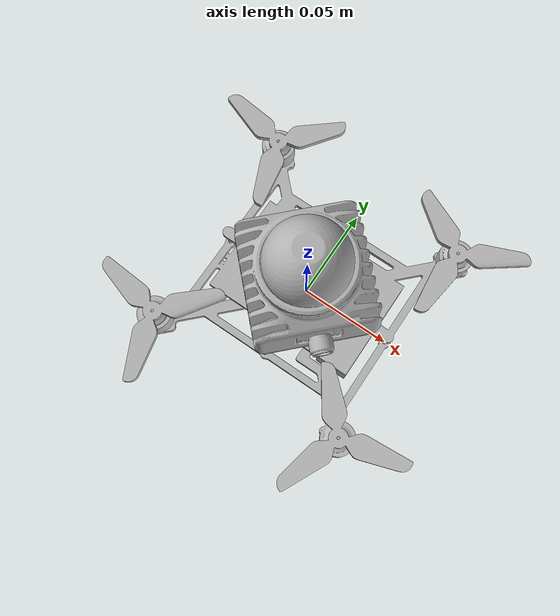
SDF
<sdf version='1.7'>
  <model name='uav_lidar' canonical_link="base_link">
    <link name='base_link'>
      <inertial>
        <pose>0.0 0 0 0 -0 0</pose>
        <mass>0.269</mass>
        <inertia>
          <ixx>2.6287e-04</ixx>
          <ixy>0</ixy>
          <ixz>0</ixz>
          <iyy>5.41904e-04</iyy>
          <iyz>0</iyz>
          <izz>3.2596e-04</izz>
        </inertia>
      </inertial>
    <collision name='base_link_collision_collision'>
        <pose>0 0 0.0 0 -0 0</pose>
        <geometry>
          <box>
            <size>0.13338 0.13338 0.074039</size>
          </box>
        </geometry>
       <surface>
          <contact />
        </surface>
      </collision>
      <visual name='base_link_visual'>
        <pose>0 0 0 0 -0 0</pose>
        <geometry>
          <mesh>
            <scale>1 1 1</scale>
            <uri>model://uav_lidar/meshes/base_link.STL</uri>
          </mesh>
        </geometry>
      </visual>
    </link>
    <joint name='joint1' type='revolute'>
      <pose relative_to='base_link'>-0.056569 0.056569 0 0 -0 0</pose>
      <parent>base_link</parent>
      <child>link1</child>
      <axis>
        <xyz>0 0 -1</xyz>
        <limit>
          <lower>-1e+16</lower>
          <upper>1e+16</upper>
        </limit>
      </axis>
    </joint>
    <link name='link1'>
      <pose relative_to='joint1'>0 0 0 0 -0 0</pose>
      <inertial>
        <pose>-0.00011 0.000222 0.018013 0 -0 0</pose>
        <mass>0.00295012</mass>
        <inertia>
          <ixx>6.45848e-07</ixx>
          <ixy>7.28245e-09</ixy>
          <ixz>4.1523e-10</ixz>
          <iyy>6.58481e-07</iyy>
          <iyz>-8.47977e-10</iyz>
          <izz>1.29996e-06</izz>
        </inertia>
      </inertial>
      <visual name='link1_visual'>
        <pose>0 0 0 0 -0 0</pose>
        <geometry>
          <mesh>
            <scale>1 1 1</scale>
            <uri>model://uav_lidar/meshes/link1.STL</uri>
          </mesh>
        </geometry>
      </visual>
    </link>
    <joint name='joint2' type='revolute'>
      <pose relative_to='base_link'>0.056569 -0.056569 0 0 -0 0</pose>
      <parent>base_link</parent>
      <child>link2</child>
      <axis>
        <xyz>0 0 -1</xyz>
        <limit>
          <lower>-1e+16</lower>
          <upper>1e+16</upper>
        </limit>
      </axis>
    </joint>
    <link name='link2'>
      <pose relative_to='joint2'>0 0 0 0 -0 0</pose>
      <inertial>
        <pose>3.9e-05 0.000245 0.018013 0 -0 0</pose>
        <mass>0.00295012</mass>
        <inertia>
          <ixx>6.43192e-07</ixx>
          <ixy>-3.52693e-09</ixy>
          <ixz>-1.50491e-10</ixz>
          <iyy>6.61136e-07</iyy>
          <iyz>-9.32115e-10</iyz>
          <izz>1.29996e-06</izz>
        </inertia>
      </inertial>
      <visual name='link2_visual'>
        <pose>0 0 0 0 -0 0</pose>
        <geometry>
          <mesh>
            <scale>1 1 1</scale>
            <uri>model://uav_lidar/meshes/link2.STL</uri>
          </mesh>
        </geometry>
      </visual>
    </link>
    <joint name='joint3' type='revolute'>
      <pose relative_to='base_link'>0.056569 0.056569 0 0 -0 0</pose>
      <parent>base_link</parent>
      <child>link3</child>
      <axis>
        <xyz>0 0 -1</xyz>
        <limit>
          <lower>-1e+16</lower>
          <upper>1e+16</upper>
        </limit>
      </axis>
    </joint>
    <link name='link3'>
      <pose relative_to='joint3'>0 0 0 0 -0 0</pose>
      <inertial>
        <pose>-0.000233 -8.4e-05 0.017987 0 -0 0</pose>
        <mass>0.00295012</mass>
        <inertia>
          <ixx>6.59226e-07</ixx>
          <ixy>-6.56214e-09</ixy>
          <ixz>-8.87866e-10</ixz>
          <iyy>6.45101e-07</iyy>
          <iyz>-3.21224e-10</iyz>
          <izz>1.29996e-06</izz>
        </inertia>
      </inertial>
      <visual name='link3_visual'>
        <pose>0 0 0 0 -0 0</pose>
        <geometry>
          <mesh>
            <scale>1 1 1</scale>
            <uri>model://uav_lidar/meshes/link3.STL</uri>
          </mesh>
        </geometry>
      </visual>
    </link>
    <joint name='joint4' type='revolute'>
      <pose relative_to='base_link'>-0.056569 -0.056569 0 0 -0 0</pose>
      <parent>base_link</parent>
      <child>link4</child>
      <axis>
        <xyz>0 0 -1</xyz>
        <limit>
          <lower>-1e+16</lower>
          <upper>1e+16</upper>
        </limit>
      </axis>
    </joint>
    <link name='link4'>
      <pose relative_to='joint4'>0 0 0 0 -0 0</pose>
      <inertial>
        <pose>-0.000191 -0.000157 0.017987 0 -0 0</pose>
        <mass>0.00295011</mass>
        <inertia>
          <ixx>6.53474e-07</ixx>
          <ixy>-9.55092e-09</ixy>
          <ixz>-7.28164e-10</ixz>
          <iyy>6.50854e-07</iyy>
          <iyz>-6.01053e-10</iyz>
          <izz>1.29996e-06</izz>
        </inertia>
      </inertial>
      <visual name='link4_visual'>
        <pose>0 0 0 0 -0 0</pose>
        <geometry>
          <mesh>
            <scale>1 1 1</scale>
            <uri>model://uav_lidar/meshes/link4.STL</uri>
          </mesh>
        </geometry>
      </visual>
    </link>

    <joint name="joint_lidar" type="fixed">
      <pose relative_to='base_link'>0 0 0.063 0 -0 2.35619449019235</pose>
      <parent>base_link</parent>
      <child>link_lidar</child>
      <axis>
        <xyz>0 0 0</xyz>
      </axis>
   </joint>
   <link name="link_lidar">
      <pose relative_to='joint_lidar'>0 0 0 0 -0 0</pose>
      <inertial>
        <pose>3.8230964319319E-07 -6.26231575659442E-06 -0.0249682835917488 0 0 0</pose>
        <mass>0.244</mass>
        <inertia>
          <ixx>1.0428E-04</ixx>
          <ixy>0</ixy>
          <ixz>0</ixz>
          <iyy>1.0732E-04</iyy>
          <iyz>0</iyz>
          <izz>1.0430E-04</izz>
        </inertia>
      </inertial>
      <visual name="link_lidar_visual">
        <pose>0 0 0 0 0 0</pose>
        <geometry>
          <mesh>
            <uri>model://uav_lidar/meshes/link_lidar.STL</uri>
          </mesh>
        </geometry>
        <material>
          <ambient>0.698039 0.698039 0.698039 1</ambient>
        </material>
      </visual>
      <collision name="link_lidar_collision">
        <pose>0 0 0 0 0 0</pose>
        <geometry>
          <mesh>
            <uri>model://uav_lidar/meshes/link_lidar.STL</uri>
          </mesh>
        </geometry>
      </collision>
    </link>

    <plugin name='rosbag' filename='libgazebo_multirotor_base_plugin.so'>
      <robotNamespace/>
      <linkName>base_link</linkName>
      <rotorVelocitySlowdownSim>10</rotorVelocitySlowdownSim>
    </plugin>
     <plugin name='front_right_motor_model' filename='libgazebo_motor_model.so'>
      <robotNamespace/>
      <jointName>joint2</jointName>
      <linkName>link2</linkName>
      <turningDirection>ccw</turningDirection>
      <timeConstantUp>0.0125</timeConstantUp>
      <timeConstantDown>0.025</timeConstantDown>
      <maxRotVelocity>3800</maxRotVelocity>
      <motorConstant>4.33948e-07</motorConstant>
      <momentConstant>0.00932</momentConstant>
      <commandSubTopic>/gazebo/command/motor_speed</commandSubTopic>
      <motorNumber>0</motorNumber>
      <rotorDragCoefficient>0.00000175</rotorDragCoefficient>
      <rollingMomentCoefficient>1e-08</rollingMomentCoefficient>
      <motorSpeedPubTopic>/motor_speed/0</motorSpeedPubTopic>
      <rotorVelocitySlowdownSim>10</rotorVelocitySlowdownSim>
    </plugin>
    <plugin name='back_left_motor_model' filename='libgazebo_motor_model.so'>
      <robotNamespace/>
      <jointName>joint1</jointName>
      <linkName>link1</linkName>
      <turningDirection>ccw</turningDirection>
      <timeConstantUp>0.0125</timeConstantUp>
      <timeConstantDown>0.025</timeConstantDown>
      <maxRotVelocity>3800</maxRotVelocity>
      <motorConstant>4.33948e-07</motorConstant>
      <momentConstant>0.00932</momentConstant>
      <commandSubTopic>/gazebo/command/motor_speed</commandSubTopic>
      <motorNumber>1</motorNumber>
      <rotorDragCoefficient>0.00000175</rotorDragCoefficient>
      <rollingMomentCoefficient>1e-08</rollingMomentCoefficient>
      <motorSpeedPubTopic>/motor_speed/1</motorSpeedPubTopic>
      <rotorVelocitySlowdownSim>10</rotorVelocitySlowdownSim>
    </plugin>
    <plugin name='front_left_motor_model' filename='libgazebo_motor_model.so'>
      <robotNamespace/>
      <jointName>joint3</jointName>
      <linkName>link3</linkName>
      <turningDirection>cw</turningDirection>
      <timeConstantUp>0.0125</timeConstantUp>
      <timeConstantDown>0.025</timeConstantDown>
      <maxRotVelocity>3800</maxRotVelocity>
      <motorConstant>4.33948e-07</motorConstant>
      <momentConstant>0.00932</momentConstant>
      <commandSubTopic>/gazebo/command/motor_speed</commandSubTopic>
      <motorNumber>2</motorNumber>
      <rotorDragCoefficient>0.00000175</rotorDragCoefficient>
      <rollingMomentCoefficient>1e-08</rollingMomentCoefficient>
      <motorSpeedPubTopic>/motor_speed/2</motorSpeedPubTopic>
      <rotorVelocitySlowdownSim>10</rotorVelocitySlowdownSim>
    </plugin>
    <plugin name='back_right_motor_model' filename='libgazebo_motor_model.so'>
      <robotNamespace/>
      <jointName>joint4</jointName>
      <linkName>link4</linkName>
      <turningDirection>cw</turningDirection>
      <timeConstantUp>0.0125</timeConstantUp>
      <timeConstantDown>0.025</timeConstantDown>
      <maxRotVelocity>3800</maxRotVelocity>
      <motorConstant>4.33948e-07</motorConstant>
      <momentConstant>0.00932</momentConstant>
      <commandSubTopic>/gazebo/command/motor_speed</commandSubTopic>
      <motorNumber>3</motorNumber>
      <rotorDragCoefficient>0.00000175</rotorDragCoefficient>
      <rollingMomentCoefficient>1e-08</rollingMomentCoefficient>
      <motorSpeedPubTopic>/motor_speed/3</motorSpeedPubTopic>
      <rotorVelocitySlowdownSim>10</rotorVelocitySlowdownSim>
    </plugin>
    <include>
      <uri>model://gps</uri>
      <pose>0.00 0 0.04 0 0 0</pose>
      <name>gps0</name>
    </include>
    <joint name='gps0_joint' type='fixed'>
      <child>gps0::link</child>
      <parent>base_link</parent>
    </joint>
    <plugin name='groundtruth_plugin' filename='libgazebo_groundtruth_plugin.so'>
      <robotNamespace/>
    </plugin>
    <plugin name='magnetometer_plugin' filename='libgazebo_magnetometer_plugin.so'>
      <robotNamespace/>
      <pubRate>100</pubRate>
      <noiseDensity>0.0004</noiseDensity>
      <randomWalk>6.4e-06</randomWalk>
      <biasCorrelationTime>600</biasCorrelationTime>
      <magTopic>/mag</magTopic>
    </plugin>
    <plugin name='barometer_plugin' filename='libgazebo_barometer_plugin.so'>
      <robotNamespace/>
      <pubRate>50</pubRate>
      <baroTopic>/baro</baroTopic>
      <baroDriftPaPerSec>0</baroDriftPaPerSec>
    </plugin>
    <plugin name='mavlink_interface' filename='libgazebo_mavlink_interface.so'>
      <robotNamespace/>
      <imuSubTopic>/imu</imuSubTopic>
      <magSubTopic>/mag</magSubTopic>
      <baroSubTopic>/baro</baroSubTopic>
      <mavlink_addr>INADDR_ANY</mavlink_addr>
      <mavlink_tcp_port>4560</mavlink_tcp_port>
      <mavlink_udp_port>14560</mavlink_udp_port>
      <serialEnabled>0</serialEnabled>
      <serialDevice>/dev/ttyACM0</serialDevice>
      <baudRate>921600</baudRate>
      <qgc_addr>INADDR_ANY</qgc_addr>
      <qgc_udp_port>14550</qgc_udp_port>
      <sdk_addr>INADDR_ANY</sdk_addr>
      <sdk_udp_port>14540</sdk_udp_port>
      <hil_mode>0</hil_mode>
      <hil_state_level>0</hil_state_level>
      <send_vision_estimation>0</send_vision_estimation>
      <send_odometry>1</send_odometry>
      <enable_lockstep>1</enable_lockstep>
      <use_tcp>1</use_tcp>
      <motorSpeedCommandPubTopic>/gazebo/command/motor_speed</motorSpeedCommandPubTopic>
      <control_channels>
        <channel name='rotor1'>
          <input_index>0</input_index>
          <input_offset>0</input_offset>
          <input_scaling>3800</input_scaling>
          <zero_position_disarmed>0</zero_position_disarmed>
          <zero_position_armed>800</zero_position_armed>
          <joint_control_type>velocity</joint_control_type>
        </channel>
        <channel name='rotor2'>
          <input_index>1</input_index>
          <input_offset>0</input_offset>
          <input_scaling>3800</input_scaling>
          <zero_position_disarmed>0</zero_position_disarmed>
          <zero_position_armed>800</zero_position_armed>
          <joint_control_type>velocity</joint_control_type>
        </channel>
        <channel name='rotor3'>
          <input_index>2</input_index>
          <input_offset>0</input_offset>
          <input_scaling>3800</input_scaling>
          <zero_position_disarmed>0</zero_position_disarmed>
          <zero_position_armed>800</zero_position_armed>
          <joint_control_type>velocity</joint_control_type>
        </channel>
        <channel name='rotor4'>
          <input_index>3</input_index>
          <input_offset>0</input_offset>
          <input_scaling>3800</input_scaling>
          <zero_position_disarmed>0</zero_position_disarmed>
          <zero_position_armed>800</zero_position_armed>
          <joint_control_type>velocity</joint_control_type>
        </channel>
        <channel name='rotor5'>
          <input_index>4</input_index>
          <input_offset>1</input_offset>
          <input_scaling>324.6</input_scaling>
          <zero_position_disarmed>0</zero_position_disarmed>
          <zero_position_armed>0</zero_position_armed>
          <joint_control_type>velocity</joint_control_type>
          <joint_control_pid>
            <p>0.1</p>
            <i>0</i>
            <d>0</d>
            <iMax>0.0</iMax>
            <iMin>0.0</iMin>
            <cmdMax>2</cmdMax>
            <cmdMin>-2</cmdMin>
          </joint_control_pid>
          <joint_name>zephyr_delta_wing::propeller_joint</joint_name>
        </channel>
        <channel name='rotor6'>
          <input_index>5</input_index>
          <input_offset>0</input_offset>
          <input_scaling>0.524</input_scaling>
          <zero_position_disarmed>0</zero_position_disarmed>
          <zero_position_armed>0</zero_position_armed>
          <joint_control_type>position</joint_control_type>
          <joint_name>zephyr_delta_wing::flap_left_joint</joint_name>
          <joint_control_pid>
            <p>10.0</p>
            <i>0</i>
            <d>0</d>
            <iMax>0</iMax>
            <iMin>0</iMin>
            <cmdMax>20</cmdMax>
            <cmdMin>-20</cmdMin>
          </joint_control_pid>
        </channel>
        <channel name='rotor7'>
          <input_index>6</input_index>
          <input_offset>0</input_offset>
          <input_scaling>0.524</input_scaling>
          <zero_position_disarmed>0</zero_position_disarmed>
          <zero_position_armed>0</zero_position_armed>
          <joint_control_type>position</joint_control_type>
          <joint_name>zephyr_delta_wing::flap_right_joint</joint_name>
          <joint_control_pid>
            <p>10.0</p>
            <i>0</i>
            <d>0</d>
            <iMax>0</iMax>
            <iMin>0</iMin>
            <cmdMax>20</cmdMax>
            <cmdMin>-20</cmdMin>
          </joint_control_pid>
        </channel>
        <channel name='rotor8'>
          <input_index>7</input_index>
          <input_offset>0</input_offset>
          <input_scaling>0.524</input_scaling>
          <zero_position_disarmed>0</zero_position_disarmed>
          <zero_position_armed>0</zero_position_armed>
          <joint_control_type>position</joint_control_type>
        </channel>
      </control_channels>
    </plugin>
    <static>0</static>
    <plugin name='rotors_gazebo_imu_plugin' filename='libgazebo_imu_plugin.so'>
      <robotNamespace/>
      <linkName>base_link</linkName>
      <imuTopic>/imu</imuTopic>
      <gyroscopeNoiseDensity>0.00018665</gyroscopeNoiseDensity>
      <gyroscopeRandomWalk>3.8785e-05</gyroscopeRandomWalk>
      <gyroscopeBiasCorrelationTime>1000.0</gyroscopeBiasCorrelationTime>
      <gyroscopeTurnOnBiasSigma>0.0087</gyroscopeTurnOnBiasSigma>
      <accelerometerNoiseDensity>0.00186</accelerometerNoiseDensity>
      <accelerometerRandomWalk>0.006</accelerometerRandomWalk>
      <accelerometerBiasCorrelationTime>300.0</accelerometerBiasCorrelationTime>
      <accelerometerTurnOnBiasSigma>0.196</accelerometerTurnOnBiasSigma>
    </plugin>
    <plugin filename="libgazebo_ros_p3d.so" name="quadrotor_groundtruth_sim">
      <updateRate>100.0</updateRate>
      <bodyName>uav_lidar::base_link</bodyName>
      <topicName>ground_truth/state</topicName>
      <gaussianNoise>0.0</gaussianNoise>
      <frameName>world</frameName>
    </plugin>

  </model>
</sdf>

<!-- rate controller -->
<!--Roll   K 1  D 0.0006  I 0.1   -->
<!--Pitch  K 1  D 0.0008  I 0.1   -->
<!--Yaw    K 1  I 0.06   -->

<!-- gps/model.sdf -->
<sdf version="1.6">
  <model name="gps">
    <link name="link">
      <pose>0 0 0 0 0 0</pose>
      <inertial>
        <pose>0 0 0 0 0 0</pose>
        <mass>0.015</mass>
        <inertia>
          <ixx>1e-05</ixx>
          <ixy>0</ixy>
          <ixz>0</ixz>
          <iyy>1e-05</iyy>
          <iyz>0</iyz>
          <izz>1e-05</izz>
        </inertia>
      </inertial>
      <visual name="visual">
        <geometry>
          <cylinder>
            <radius>0.01</radius>
            <length>0.002</length>
          </cylinder>
        </geometry>
        <material>
          <script>
            <name>Gazebo/Black</name>
            <uri>file://usr/share/gz/gz-sim8/media/gazebo.material</uri>
          </script>
        </material>
      </visual>
      <sensor name="gps" type="gps">
        <pose>0 0 0 0 0 0</pose>
        <update_rate>5.0</update_rate>
        <always_on>true</always_on>
        <visualize>false</visualize>
        <!-- GpsSensor noise currently not used -->
        <plugin name="gps_plugin" filename="libgazebo_gps_plugin.so">
          <robotNamespace></robotNamespace>
          <gpsNoise>true</gpsNoise>
          <gpsXYRandomWalk>2.0</gpsXYRandomWalk>
          <gpsZRandomWalk>4.0</gpsZRandomWalk>
          <gpsXYNoiseDensity>2.0e-4</gpsXYNoiseDensity>
          <gpsZNoiseDensity>4.0e-4</gpsZNoiseDensity>
          <gpsVXYNoiseDensity>0.2</gpsVXYNoiseDensity>
          <gpsVZNoiseDensity>0.4</gpsVZNoiseDensity>
        </plugin>
      </sensor>
    </link>
  </model>
</sdf>
